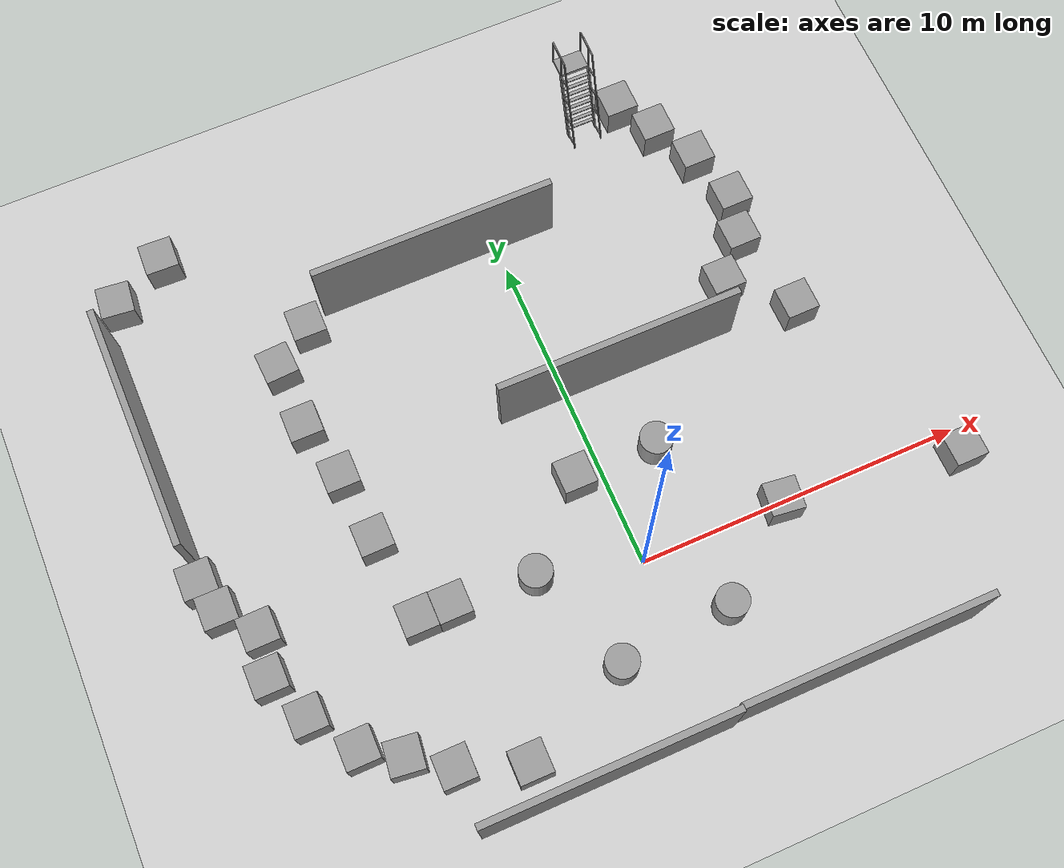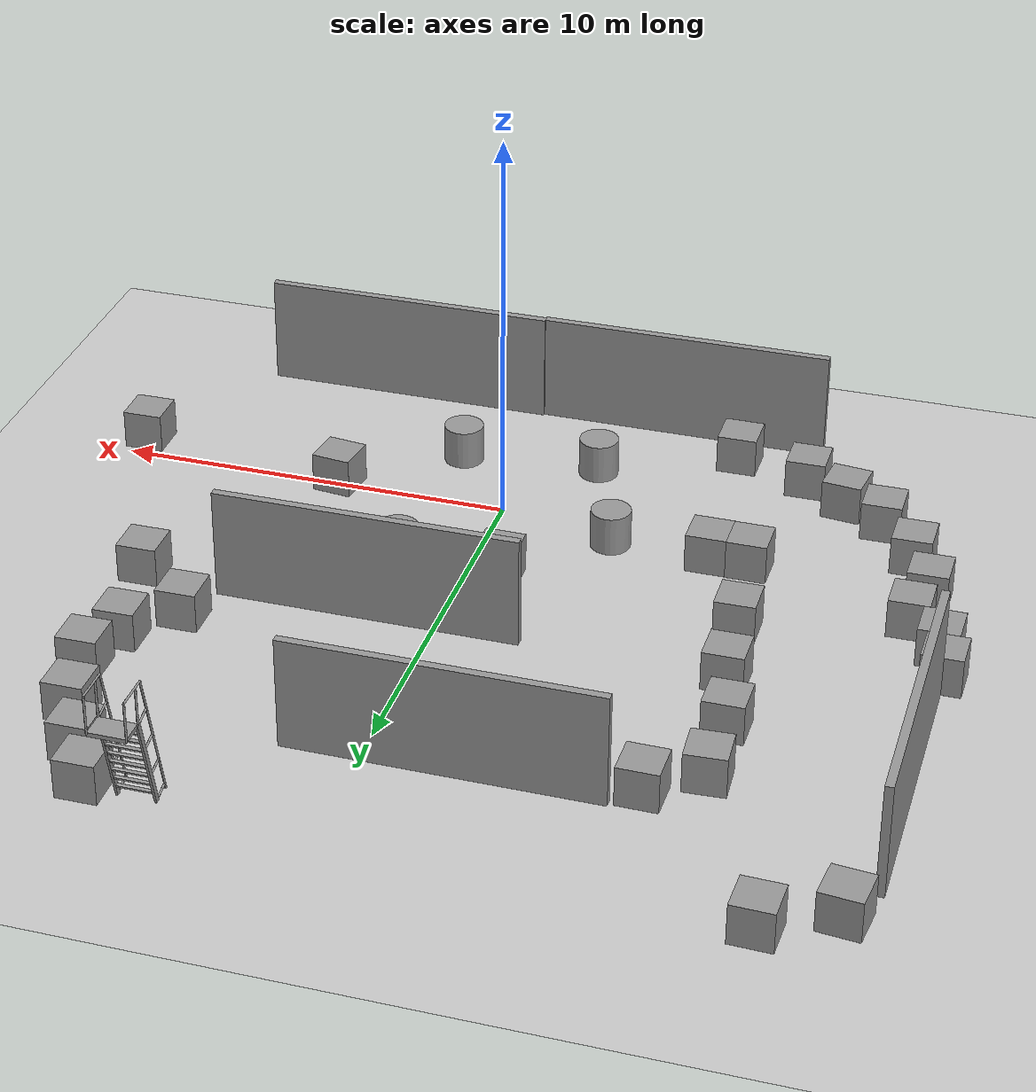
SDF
<sdf version="1.7">
 <world name="default">
  <light name="sun" type="directional">
   <pose>0 0 10 0 -0 0</pose>
   <diffuse>0.8 0.8 0.8 1</diffuse>
   <specular>0.2 0.2 0.2 1</specular>
   <attenuation>
    <range>1000</range>
    <constant>0.9</constant>
    <linear>0.01</linear>
    <quadratic>0.001</quadratic>
   </attenuation>
   <direction>-0.5 0.1 -0.9</direction>
   <spot><inner_angle>0</inner_angle><outer_angle>0</outer_angle><falloff>0</falloff></spot>
  </light>
  <model name="ground_plane">
   <static>1</static>
   <link name="link">
    <collision name="collision">
     <geometry><plane><normal>0 0 1</normal><size>100 100</size></plane></geometry>
     <surface><friction><ode><mu>100</mu><mu2>50</mu2></ode></friction></surface>
    </collision>
    <visual name="visual">
     <cast_shadows>0</cast_shadows>
     <geometry><plane><normal>0 0 1</normal><size>100 100</size></plane></geometry>
     <material>
      <script><uri>file://media/materials/scripts/gazebo.material</uri><name>Gazebo/Grey</name></script>
     </material>
    </visual>
   </link>
  </model>
  <gravity>0 0 -9.8</gravity>
  <magnetic_field>6e-06 2.3e-05 -4.2e-05</magnetic_field>
  <atmosphere type="adiabatic"/>
  <physics type="ode">
   <max_step_size>0.001</max_step_size>
   <real_time_factor>1</real_time_factor>
   <real_time_update_rate>1000</real_time_update_rate>
  </physics>
  <scene><ambient>0.4 0.4 0.4 1</ambient><background>0.7 0.7 0.7 1</background><shadows>1</shadows></scene>
  <audio><device>default</device></audio>
  <spherical_coordinates>
   <surface_model>EARTH_WGS84</surface_model>
   <latitude_deg>0</latitude_deg>
   <longitude_deg>0</longitude_deg>
   <elevation>0</elevation>
   <heading_deg>0</heading_deg>
  </spherical_coordinates>
  <model name="unit_box">
   <pose>-11.2168 13.3003 0.5 -0 -0 -0.103251</pose>
   <link name="link">
    <inertial>
     <mass>1</mass>
     <inertia>
      <ixx>0.166667</ixx>
      <ixy>0</ixy>
      <ixz>0</ixz>
      <iyy>0.166667</iyy>
      <iyz>0</iyz>
      <izz>0.166667</izz>
     </inertia>
    </inertial>
    <collision name="collision"><geometry><box><size>1 1 1</size></box></geometry></collision>
    <visual name="visual">
     <geometry><box><size>1 1 1</size></box></geometry>
     <material>
      <script><name>Gazebo/Grey</name><uri>file://media/materials/scripts/gazebo.material</uri></script>
     </material>
    </visual>
   </link>
  </model>
  <model name="unit_box_clone">
   <pose>5.2995 13.6481 0.499995 0 1e-05 0.005991</pose>
   <link name="link">
    <inertial>
     <mass>1</mass>
     <inertia>
      <ixx>0.166667</ixx>
      <ixy>0</ixy>
      <ixz>0</ixz>
      <iyy>0.166667</iyy>
      <iyz>0</iyz>
      <izz>0.166667</izz>
     </inertia>
    </inertial>
    <collision name="collision"><geometry><box><size>1 1 1</size></box></geometry></collision>
    <visual name="visual">
     <geometry><box><size>1 1 1</size></box></geometry>
     <material>
      <script><name>Gazebo/Grey</name><uri>file://media/materials/scripts/gazebo.material</uri></script>
     </material>
    </visual>
   </link>
  </model>
  <model name="unit_box_clone_0">
   <pose>5.9952 12.4311 0.499995 0 -1e-05 0.006049</pose>
   <link name="link">
    <inertial>
     <mass>1</mass>
     <inertia>
      <ixx>0.166667</ixx>
      <ixy>0</ixy>
      <ixz>0</ixz>
      <iyy>0.166667</iyy>
      <iyz>0</iyz>
      <izz>0.166667</izz>
     </inertia>
    </inertial>
    <collision name="collision"><geometry><box><size>1 1 1</size></box></geometry></collision>
    <visual name="visual">
     <geometry><box><size>1 1 1</size></box></geometry>
     <material>
      <script><name>Gazebo/Grey</name><uri>file://media/materials/scripts/gazebo.material</uri></script>
     </material>
    </visual>
   </link>
  </model>
  <model name="unit_box_clone_1">
   <pose>6.72968 11.0624 0.499995 0 -1e-05 0.006055</pose>
   <link name="link">
    <inertial>
     <mass>1</mass>
     <inertia>
      <ixx>0.166667</ixx>
      <ixy>0</ixy>
      <ixz>0</ixz>
      <iyy>0.166667</iyy>
      <iyz>0</iyz>
      <izz>0.166667</izz>
     </inertia>
    </inertial>
    <collision name="collision"><geometry><box><size>1 1 1</size></box></geometry></collision>
    <visual name="visual">
     <geometry><box><size>1 1 1</size></box></geometry>
     <material>
      <script><name>Gazebo/Grey</name><uri>file://media/materials/scripts/gazebo.material</uri></script>
     </material>
    </visual>
   </link>
  </model>
  <model name="unit_box_clone_2">
   <pose>7.17301 9.32175 0.499995 0 -1e-05 0.010117</pose>
   <link name="link">
    <inertial>
     <mass>1</mass>
     <inertia>
      <ixx>0.166667</ixx>
      <ixy>0</ixy>
      <ixz>0</ixz>
      <iyy>0.166667</iyy>
      <iyz>0</iyz>
      <izz>0.166667</izz>
     </inertia>
    </inertial>
    <collision name="collision"><geometry><box><size>1 1 1</size></box></geometry></collision>
    <visual name="visual">
     <geometry><box><size>1 1 1</size></box></geometry>
     <material>
      <script><name>Gazebo/Grey</name><uri>file://media/materials/scripts/gazebo.material</uri></script>
     </material>
    </visual>
   </link>
  </model>
  <model name="unit_box_clone_3">
   <pose>-11.7401 4.29637 0.499995 -1e-05 -0 -0.003177</pose>
   <link name="link">
    <inertial>
     <mass>1</mass>
     <inertia>
      <ixx>0.166667</ixx>
      <ixy>0</ixy>
      <ixz>0</ixz>
      <iyy>0.166667</iyy>
      <iyz>0</iyz>
      <izz>0.166667</izz>
     </inertia>
    </inertial>
    <collision name="collision"><geometry><box><size>1 1 1</size></box></geometry></collision>
    <visual name="visual">
     <geometry><box><size>1 1 1</size></box></geometry>
     <material>
      <script><name>Gazebo/Grey</name><uri>file://media/materials/scripts/gazebo.material</uri></script>
     </material>
    </visual>
   </link>
  </model>
  <model name="unit_box_0">
   <pose>-5.1691 -3.96341 0.499995 0 1e-05 -5e-06</pose>
   <link name="link">
    <inertial>
     <mass>1</mass>
     <inertia>
      <ixx>0.166667</ixx>
      <ixy>0</ixy>
      <ixz>0</ixz>
      <iyy>0.166667</iyy>
      <iyz>0</iyz>
      <izz>0.166667</izz>
     </inertia>
    </inertial>
    <collision name="collision"><geometry><box><size>1 1 1</size></box></geometry></collision>
    <visual name="visual">
     <geometry><box><size>1 1 1</size></box></geometry>
     <material>
      <script><name>Gazebo/Grey</name><uri>file://media/materials/scripts/gazebo.material</uri></script>
     </material>
    </visual>
   </link>
  </model>
  <model name="unit_box_1">
   <pose>-5.49626 0.9014 0.499995 0 1e-05 -0.000242</pose>
   <link name="link">
    <inertial>
     <mass>1</mass>
     <inertia>
      <ixx>0.166667</ixx>
      <ixy>0</ixy>
      <ixz>0</ixz>
      <iyy>0.166667</iyy>
      <iyz>0</iyz>
      <izz>0.166667</izz>
     </inertia>
    </inertial>
    <collision name="collision"><geometry><box><size>1 1 1</size></box></geometry></collision>
    <visual name="visual">
     <geometry><box><size>1 1 1</size></box></geometry>
     <material>
      <script><name>Gazebo/Grey</name><uri>file://media/materials/scripts/gazebo.material</uri></script>
     </material>
    </visual>
   </link>
  </model>
  <model name="unit_box_2">
   <pose>-6.49752 0.913263 0.499995 1e-05 -0 -0.000773</pose>
   <link name="link">
    <inertial>
     <mass>1</mass>
     <inertia>
      <ixx>0.166667</ixx>
      <ixy>0</ixy>
      <ixz>0</ixz>
      <iyy>0.166667</iyy>
      <iyz>0</iyz>
      <izz>0.166667</izz>
     </inertia>
    </inertial>
    <collision name="collision"><geometry><box><size>1 1 1</size></box></geometry></collision>
    <visual name="visual">
     <geometry><box><size>1 1 1</size></box></geometry>
     <material>
      <script><name>Gazebo/Grey</name><uri>file://media/materials/scripts/gazebo.material</uri></script>
     </material>
    </visual>
   </link>
  </model>
  <model name="unit_box_3">
   <pose>-0.828361 2.96506 0.499995 0 -1e-05 -0.00072</pose>
   <link name="link">
    <inertial>
     <mass>1</mass>
     <inertia>
      <ixx>0.166667</ixx>
      <ixy>0</ixy>
      <ixz>0</ixz>
      <iyy>0.166667</iyy>
      <iyz>0</iyz>
      <izz>0.166667</izz>
     </inertia>
    </inertial>
    <collision name="collision"><geometry><box><size>1 1 1</size></box></geometry></collision>
    <visual name="visual">
     <geometry><box><size>1 1 1</size></box></geometry>
     <material>
      <script><name>Gazebo/Grey</name><uri>file://media/materials/scripts/gazebo.material</uri></script>
     </material>
    </visual>
   </link>
  </model>
  <model name="unit_box_4">
   <pose>-7.01197 5.65052 0.499995 0 -1e-05 -0.000837</pose>
   <link name="link">
    <inertial>
     <mass>1</mass>
     <inertia>
      <ixx>0.166667</ixx>
      <ixy>0</ixy>
      <ixz>0</ixz>
      <iyy>0.166667</iyy>
      <iyz>0</iyz>
      <izz>0.166667</izz>
     </inertia>
    </inertial>
    <collision name="collision"><geometry><box><size>1 1 1</size></box></geometry></collision>
    <visual name="visual">
     <geometry><box><size>1 1 1</size></box></geometry>
     <material>
      <script><name>Gazebo/Grey</name><uri>file://media/materials/scripts/gazebo.material</uri></script>
     </material>
    </visual>
   </link>
  </model>
  <model name="unit_box_5">
   <pose>-7.43923 7.4957 0.499995 0 -1e-05 -0.000852</pose>
   <link name="link">
    <inertial>
     <mass>1</mass>
     <inertia>
      <ixx>0.166667</ixx>
      <ixy>0</ixy>
      <ixz>0</ixz>
      <iyy>0.166667</iyy>
      <iyz>0</iyz>
      <izz>0.166667</izz>
     </inertia>
    </inertial>
    <collision name="collision"><geometry><box><size>1 1 1</size></box></geometry></collision>
    <visual name="visual">
     <geometry><box><size>1 1 1</size></box></geometry>
     <material>
      <script><name>Gazebo/Grey</name><uri>file://media/materials/scripts/gazebo.material</uri></script>
     </material>
    </visual>
   </link>
  </model>
  <model name="unit_box_6">
   <pose>-6.25848 10.4149 0.499995 -1e-05 0 -0.00887</pose>
   <link name="link">
    <inertial>
     <mass>1</mass>
     <inertia>
      <ixx>0.166667</ixx>
      <ixy>0</ixy>
      <ixz>0</ixz>
      <iyy>0.166667</iyy>
      <iyz>0</iyz>
      <izz>0.166667</izz>
     </inertia>
    </inertial>
    <collision name="collision"><geometry><box><size>1 1 1</size></box></geometry></collision>
    <visual name="visual">
     <geometry><box><size>1 1 1</size></box></geometry>
     <material>
      <script><name>Gazebo/Grey</name><uri>file://media/materials/scripts/gazebo.material</uri></script>
     </material>
    </visual>
   </link>
  </model>
  <model name="unit_box_7">
   <pose>-7.48563 9.50061 0.499995 -0 -1e-05 0.055997</pose>
   <link name="link">
    <inertial>
     <mass>1</mass>
     <inertia>
      <ixx>0.166667</ixx>
      <ixy>0</ixy>
      <ixz>0</ixz>
      <iyy>0.166667</iyy>
      <iyz>0</iyz>
      <izz>0.166667</izz>
     </inertia>
    </inertial>
    <collision name="collision"><geometry><box><size>1 1 1</size></box></geometry></collision>
    <visual name="visual">
     <geometry><box><size>1 1 1</size></box></geometry>
     <material>
      <script><name>Gazebo/Grey</name><uri>file://media/materials/scripts/gazebo.material</uri></script>
     </material>
    </visual>
   </link>
  </model>
  <model name="unit_box_8">
   <pose>-9.57504 14.1698 0.499995 -0 -1e-05 -0.031338</pose>
   <link name="link">
    <inertial>
     <mass>1</mass>
     <inertia>
      <ixx>0.166667</ixx>
      <ixy>0</ixy>
      <ixz>0</ixz>
      <iyy>0.166667</iyy>
      <iyz>0</iyz>
      <izz>0.166667</izz>
     </inertia>
    </inertial>
    <collision name="collision"><geometry><box><size>1 1 1</size></box></geometry></collision>
    <visual name="visual">
     <geometry><box><size>1 1 1</size></box></geometry>
     <material>
      <script><name>Gazebo/Grey</name><uri>file://media/materials/scripts/gazebo.material</uri></script>
     </material>
    </visual>
   </link>
  </model>
  <model name="unit_box_9">
   <pose>4.31522 -0.036113 0.499995 0 -1e-05 -0.119973</pose>
   <link name="link">
    <inertial>
     <mass>1</mass>
     <inertia>
      <ixx>0.166667</ixx>
      <ixy>0</ixy>
      <ixz>0</ixz>
      <iyy>0.166667</iyy>
      <iyz>0</iyz>
      <izz>0.166667</izz>
     </inertia>
    </inertial>
    <collision name="collision"><geometry><box><size>1 1 1</size></box></geometry></collision>
    <visual name="visual">
     <geometry><box><size>1 1 1</size></box></geometry>
     <material>
      <script><name>Gazebo/Grey</name><uri>file://media/materials/scripts/gazebo.material</uri></script>
     </material>
    </visual>
   </link>
  </model>
  <model name="unit_box_9_clone">
   <pose>-7.07865 -3.26818 0.499995 0 -1e-05 0</pose>
   <link name="link">
    <inertial>
     <mass>1</mass>
     <inertia>
      <ixx>0.166667</ixx>
      <ixy>0</ixy>
      <ixz>0</ixz>
      <iyy>0.166667</iyy>
      <iyz>0</iyz>
      <izz>0.166667</izz>
     </inertia>
    </inertial>
    <collision name="collision"><geometry><box><size>1 1 1</size></box></geometry></collision>
    <visual name="visual">
     <geometry><box><size>1 1 1</size></box></geometry>
     <material>
      <script><name>Gazebo/Grey</name><uri>file://media/materials/scripts/gazebo.material</uri></script>
     </material>
    </visual>
   </link>
  </model>
  <model name="unit_box_10">
   <pose>-8.20219 -2.47169 0.499995 0 -1e-05 -0.119963</pose>
   <link name="link">
    <inertial>
     <mass>1</mass>
     <inertia>
      <ixx>0.166667</ixx>
      <ixy>0</ixy>
      <ixz>0</ixz>
      <iyy>0.166667</iyy>
      <iyz>0</iyz>
      <izz>0.166667</izz>
     </inertia>
    </inertial>
    <collision name="collision"><geometry><box><size>1 1 1</size></box></geometry></collision>
    <visual name="visual">
     <geometry><box><size>1 1 1</size></box></geometry>
     <material>
      <script><name>Gazebo/Grey</name><uri>file://media/materials/scripts/gazebo.material</uri></script>
     </material>
    </visual>
   </link>
  </model>
  <model name="unit_box_9_clone_0">
   <pose>-9.26634 -1.78576 0.499995 -1e-05 -0 0.004711</pose>
   <link name="link">
    <inertial>
     <mass>1</mass>
     <inertia>
      <ixx>0.166667</ixx>
      <ixy>0</ixy>
      <ixz>0</ixz>
      <iyy>0.166667</iyy>
      <iyz>0</iyz>
      <izz>0.166667</izz>
     </inertia>
    </inertial>
    <collision name="collision"><geometry><box><size>1 1 1</size></box></geometry></collision>
    <visual name="visual">
     <geometry><box><size>1 1 1</size></box></geometry>
     <material>
      <script><name>Gazebo/Grey</name><uri>file://media/materials/scripts/gazebo.material</uri></script>
     </material>
    </visual>
   </link>
  </model>
  <model name="unit_box_9_clone_1">
   <pose>-10.2405 -0.435828 0.499995 -1e-05 -0 0.004816</pose>
   <link name="link">
    <inertial>
     <mass>1</mass>
     <inertia>
      <ixx>0.166667</ixx>
      <ixy>0</ixy>
      <ixz>0</ixz>
      <iyy>0.166667</iyy>
      <iyz>0</iyz>
      <izz>0.166667</izz>
     </inertia>
    </inertial>
    <collision name="collision"><geometry><box><size>1 1 1</size></box></geometry></collision>
    <visual name="visual">
     <geometry><box><size>1 1 1</size></box></geometry>
     <material>
      <script><name>Gazebo/Grey</name><uri>file://media/materials/scripts/gazebo.material</uri></script>
     </material>
    </visual>
   </link>
  </model>
  <model name="unit_box_9_clone_2">
   <pose>-10.8614 0.984634 0.499995 -0 -1e-05 0.00545</pose>
   <link name="link">
    <inertial>
     <mass>1</mass>
     <inertia>
      <ixx>0.166667</ixx>
      <ixy>0</ixy>
      <ixz>0</ixz>
      <iyy>0.166667</iyy>
      <iyz>0</iyz>
      <izz>0.166667</izz>
     </inertia>
    </inertial>
    <collision name="collision"><geometry><box><size>1 1 1</size></box></geometry></collision>
    <visual name="visual">
     <geometry><box><size>1 1 1</size></box></geometry>
     <material>
      <script><name>Gazebo/Grey</name><uri>file://media/materials/scripts/gazebo.material</uri></script>
     </material>
    </visual>
   </link>
  </model>
  <model name="unit_box_9_clone_3">
   <pose>-11.4994 3.29533 0.499995 0 1e-05 -0.003078</pose>
   <link name="link">
    <inertial>
     <mass>1</mass>
     <inertia>
      <ixx>0.166667</ixx>
      <ixy>0</ixy>
      <ixz>0</ixz>
      <iyy>0.166667</iyy>
      <iyz>0</iyz>
      <izz>0.166667</izz>
     </inertia>
    </inertial>
    <collision name="collision"><geometry><box><size>1 1 1</size></box></geometry></collision>
    <visual name="visual">
     <geometry><box><size>1 1 1</size></box></geometry>
     <material>
      <script><name>Gazebo/Grey</name><uri>file://media/materials/scripts/gazebo.material</uri></script>
     </material>
    </visual>
   </link>
  </model>
  <model name="unit_box_9_clone_4">
   <pose>-6.79653 3.5319 0.499995 1e-05 0 0.010719</pose>
   <link name="link">
    <inertial>
     <mass>1</mass>
     <inertia>
      <ixx>0.166667</ixx>
      <ixy>0</ixy>
      <ixz>0</ixz>
      <iyy>0.166667</iyy>
      <iyz>0</iyz>
      <izz>0.166667</izz>
     </inertia>
    </inertial>
    <collision name="collision"><geometry><box><size>1 1 1</size></box></geometry></collision>
    <visual name="visual">
     <geometry><box><size>1 1 1</size></box></geometry>
     <material>
      <script><name>Gazebo/Grey</name><uri>file://media/materials/scripts/gazebo.material</uri></script>
     </material>
    </visual>
   </link>
  </model>
  <model name="unit_box_9_clone_5">
   <pose>-10.6446 2.29677 0.499995 -1e-05 -0 0.008445</pose>
   <link name="link">
    <inertial>
     <mass>1</mass>
     <inertia>
      <ixx>0.166667</ixx>
      <ixy>0</ixy>
      <ixz>0</ixz>
      <iyy>0.166667</iyy>
      <iyz>0</iyz>
      <izz>0.166667</izz>
     </inertia>
    </inertial>
    <collision name="collision"><geometry><box><size>1 1 1</size></box></geometry></collision>
    <visual name="visual">
     <geometry><box><size>1 1 1</size></box></geometry>
     <material>
      <script><name>Gazebo/Grey</name><uri>file://media/materials/scripts/gazebo.material</uri></script>
     </material>
    </visual>
   </link>
  </model>
  <model name="grey_wall">
   <static>1</static>
   <link name="link">
    <pose>0 0 1.4 0 -0 0</pose>
    <collision name="collision"><geometry><box><size>7.5 0.2 2.8</size></box></geometry></collision>
    <visual name="visual">
     <cast_shadows>0</cast_shadows>
     <geometry><box><size>7.5 0.2 2.8</size></box></geometry>
     <material>
      <script>
       <uri>model://grey_wall/materials/scripts</uri>
       <uri>model://grey_wall/materials/textures</uri>
       <name>vrc/grey_wall</name>
      </script>
     </material>
    </visual>
   </link>
   <pose>4.09532 -5.05186 0 0 -0 0</pose>
  </model>
  <model name="grey_wall_clone">
   <static>1</static>
   <link name="link">
    <pose>0 0 1.4 0 -0 0</pose>
    <collision name="collision"><geometry><box><size>7.5 0.2 2.8</size></box></geometry></collision>
    <visual name="visual">
     <cast_shadows>0</cast_shadows>
     <geometry><box><size>7.5 0.2 2.8</size></box></geometry>
     <material>
      <script>
       <uri>model://grey_wall/materials/scripts</uri>
       <uri>model://grey_wall/materials/textures</uri>
       <name>vrc/grey_wall</name>
      </script>
     </material>
    </visual>
   </link>
   <pose>-3.37906 -5.10536 0 0 -0 0</pose>
  </model>
  <model name="grey_wall_clone_0_clone">
   <static>1</static>
   <link name="link">
    <pose>0 0 1.4 0 -0 0</pose>
    <collision name="collision"><geometry><box><size>7.5 0.2 2.8</size></box></geometry></collision>
    <visual name="visual">
     <cast_shadows>0</cast_shadows>
     <geometry><box><size>7.5 0.2 2.8</size></box></geometry>
     <material>
      <script>
       <uri>model://grey_wall/materials/scripts</uri>
       <uri>model://grey_wall/materials/textures</uri>
       <name>vrc/grey_wall</name>
      </script>
     </material>
    </visual>
   </link>
   <pose>-11.7144 8.54732 0 0 -0 1.58113</pose>
  </model>
  <model name="grey_wall_clone_0_clone_0">
   <static>1</static>
   <link name="link">
    <pose>0 0 1.4 0 -0 0</pose>
    <collision name="collision"><geometry><box><size>7.5 0.2 2.8</size></box></geometry></collision>
    <visual name="visual">
     <cast_shadows>0</cast_shadows>
     <geometry><box><size>7.5 0.2 2.8</size></box></geometry>
     <material>
      <script>
       <uri>model://grey_wall/materials/scripts</uri>
       <uri>model://grey_wall/materials/textures</uri>
       <name>vrc/grey_wall</name>
      </script>
     </material>
    </visual>
   </link>
   <pose>-1.88537 10.8825 0 0 -0 0</pose>
  </model>
  <model name="grey_wall_clone_0_clone_0_clone">
   <static>1</static>
   <link name="link">
    <pose>0 0 1.4 0 -0 0</pose>
    <collision name="collision"><geometry><box><size>7.5 0.2 2.8</size></box></geometry></collision>
    <visual name="visual">
     <cast_shadows>0</cast_shadows>
     <geometry><box><size>7.5 0.2 2.8</size></box></geometry>
     <material>
      <script>
       <uri>model://grey_wall/materials/scripts</uri>
       <uri>model://grey_wall/materials/textures</uri>
       <name>vrc/grey_wall</name>
      </script>
     </material>
    </visual>
   </link>
   <pose>1.66853 5.55754 0 0 -0 0</pose>
  </model>
  <model name="unit_box_clone_2_clone">
   <pose>5.75697 6.85812 0.499995 -1e-05 -0 0.010117</pose>
   <link name="link">
    <inertial>
     <mass>1</mass>
     <inertia>
      <ixx>0.166667</ixx>
      <ixy>0</ixy>
      <ixz>0</ixz>
      <iyy>0.166667</iyy>
      <iyz>0</iyz>
      <izz>0.166667</izz>
     </inertia>
    </inertial>
    <collision name="collision"><geometry><box><size>1 1 1</size></box></geometry></collision>
    <visual name="visual">
     <geometry><box><size>1 1 1</size></box></geometry>
     <material>
      <script><name>Gazebo/Grey</name><uri>file://media/materials/scripts/gazebo.material</uri></script>
     </material>
    </visual>
   </link>
  </model>
  <model name="unit_box_clone_2_clone_0">
   <pose>6.81358 8.02295 0.499995 -1e-05 -0 0.010117</pose>
   <link name="link">
    <inertial>
     <mass>1</mass>
     <inertia>
      <ixx>0.166667</ixx>
      <ixy>0</ixy>
      <ixz>0</ixz>
      <iyy>0.166667</iyy>
      <iyz>0</iyz>
      <izz>0.166667</izz>
     </inertia>
    </inertial>
    <collision name="collision"><geometry><box><size>1 1 1</size></box></geometry></collision>
    <visual name="visual">
     <geometry><box><size>1 1 1</size></box></geometry>
     <material>
      <script><name>Gazebo/Grey</name><uri>file://media/materials/scripts/gazebo.material</uri></script>
     </material>
    </visual>
   </link>
  </model>
  <model name="ladder_75deg_2rails">
   <static>1</static>
   <link name="step0">
    <pose>0 0.071453 0.266667 0 -0 0</pose>
    <inertial>
     <mass>9.75482</mass>
     <inertia>
      <ixx>0.00957124</ixx>
      <iyy>0.65963</iyy>
      <izz>0.666842</izz>
      <ixy>0</ixy>
      <ixz>0</ixz>
      <iyz>0</iyz>
     </inertia>
    </inertial>
    <collision name="collision"><geometry><box><size>0.9 0.1016 0.0381</size></box></geometry></collision>
    <visual name="visual">
     <geometry><box><size>0.9 0.1016 0.0381</size></box></geometry>
     <material>
      <script><uri>file://media/materials/scripts/gazebo.material</uri><name>Gazebo/Grey</name></script>
     </material>
    </visual>
   </link>
   <link name="step1">
    <pose>0 0.142906 0.533333 0 -0 0</pose>
    <inertial>
     <mass>9.75482</mass>
     <inertia>
      <ixx>0.00957124</ixx>
      <iyy>0.65963</iyy>
      <izz>0.666842</izz>
      <ixy>0</ixy>
      <ixz>0</ixz>
      <iyz>0</iyz>
     </inertia>
    </inertial>
    <collision name="collision"><geometry><box><size>0.9 0.1016 0.0381</size></box></geometry></collision>
    <visual name="visual">
     <geometry><box><size>0.9 0.1016 0.0381</size></box></geometry>
     <material>
      <script><uri>file://media/materials/scripts/gazebo.material</uri><name>Gazebo/Grey</name></script>
     </material>
    </visual>
   </link>
   <link name="step2">
    <pose>0 0.214359 0.8 0 -0 0</pose>
    <inertial>
     <mass>9.75482</mass>
     <inertia>
      <ixx>0.00957124</ixx>
      <iyy>0.65963</iyy>
      <izz>0.666842</izz>
      <ixy>0</ixy>
      <ixz>0</ixz>
      <iyz>0</iyz>
     </inertia>
    </inertial>
    <collision name="collision"><geometry><box><size>0.9 0.1016 0.0381</size></box></geometry></collision>
    <visual name="visual">
     <geometry><box><size>0.9 0.1016 0.0381</size></box></geometry>
     <material>
      <script><uri>file://media/materials/scripts/gazebo.material</uri><name>Gazebo/Grey</name></script>
     </material>
    </visual>
   </link>
   <link name="step3">
    <pose>0 0.285812 1.06667 0 -0 0</pose>
    <inertial>
     <mass>9.75482</mass>
     <inertia>
      <ixx>0.00957124</ixx>
      <iyy>0.65963</iyy>
      <izz>0.666842</izz>
      <ixy>0</ixy>
      <ixz>0</ixz>
      <iyz>0</iyz>
     </inertia>
    </inertial>
    <collision name="collision"><geometry><box><size>0.9 0.1016 0.0381</size></box></geometry></collision>
    <visual name="visual">
     <geometry><box><size>0.9 0.1016 0.0381</size></box></geometry>
     <material>
      <script><uri>file://media/materials/scripts/gazebo.material</uri><name>Gazebo/Grey</name></script>
     </material>
    </visual>
   </link>
   <link name="step4">
    <pose>0 0.357266 1.33333 0 -0 0</pose>
    <inertial>
     <mass>9.75482</mass>
     <inertia>
      <ixx>0.00957124</ixx>
      <iyy>0.65963</iyy>
      <izz>0.666842</izz>
      <ixy>0</ixy>
      <ixz>0</ixz>
      <iyz>0</iyz>
     </inertia>
    </inertial>
    <collision name="collision"><geometry><box><size>0.9 0.1016 0.0381</size></box></geometry></collision>
    <visual name="visual">
     <geometry><box><size>0.9 0.1016 0.0381</size></box></geometry>
     <material>
      <script><uri>file://media/materials/scripts/gazebo.material</uri><name>Gazebo/Grey</name></script>
     </material>
    </visual>
   </link>
   <link name="step5">
    <pose>0 0.428719 1.6 0 -0 0</pose>
    <inertial>
     <mass>9.75482</mass>
     <inertia>
      <ixx>0.00957124</ixx>
      <iyy>0.65963</iyy>
      <izz>0.666842</izz>
      <ixy>0</ixy>
      <ixz>0</ixz>
      <iyz>0</iyz>
     </inertia>
    </inertial>
    <collision name="collision"><geometry><box><size>0.9 0.1016 0.0381</size></box></geometry></collision>
    <visual name="visual">
     <geometry><box><size>0.9 0.1016 0.0381</size></box></geometry>
     <material>
      <script><uri>file://media/materials/scripts/gazebo.material</uri><name>Gazebo/Grey</name></script>
     </material>
    </visual>
   </link>
   <link name="step6">
    <pose>0 0.500172 1.86667 0 -0 0</pose>
    <inertial>
     <mass>9.75482</mass>
     <inertia>
      <ixx>0.00957124</ixx>
      <iyy>0.65963</iyy>
      <izz>0.666842</izz>
      <ixy>0</ixy>
      <ixz>0</ixz>
      <iyz>0</iyz>
     </inertia>
    </inertial>
    <collision name="collision"><geometry><box><size>0.9 0.1016 0.0381</size></box></geometry></collision>
    <visual name="visual">
     <geometry><box><size>0.9 0.1016 0.0381</size></box></geometry>
     <material>
      <script><uri>file://media/materials/scripts/gazebo.material</uri><name>Gazebo/Grey</name></script>
     </material>
    </visual>
   </link>
   <link name="step7">
    <pose>0 0.571625 2.13333 0 -0 0</pose>
    <inertial>
     <mass>9.75482</mass>
     <inertia>
      <ixx>0.00957124</ixx>
      <iyy>0.65963</iyy>
      <izz>0.666842</izz>
      <ixy>0</ixy>
      <ixz>0</ixz>
      <iyz>0</iyz>
     </inertia>
    </inertial>
    <collision name="collision"><geometry><box><size>0.9 0.1016 0.0381</size></box></geometry></collision>
    <visual name="visual">
     <geometry><box><size>0.9 0.1016 0.0381</size></box></geometry>
     <material>
      <script><uri>file://media/materials/scripts/gazebo.material</uri><name>Gazebo/Grey</name></script>
     </material>
    </visual>
   </link>
   <link name="landing">
    <pose>0 0.943078 2.4 0 -0 0</pose>
    <inertial>
     <mass>57.6072</mass>
     <inertia><ixx>1.73518</ixx><iyy>3.89545</iyy><izz>5.6167</izz><ixy>0</ixy><ixz>0</ixz><iyz>0</iyz></inertia>
    </inertial>
    <collision name="collision"><geometry><box><size>0.9 0.6 0.1016</size></box></geometry></collision>
    <visual name="visual">
     <geometry><box><size>0.9 0.6 0.1016</size></box></geometry>
     <material>
      <script><uri>file://media/materials/scripts/gazebo.material</uri><name>Gazebo/Grey</name></script>
     </material>
    </visual>
   </link>
   <link name="left_side_wall">
    <pose>-0.45 0.321539 1.2 1.309 -0 0</pose>
    <collision name="collision"><geometry><box><size>0.0508 2.56466 0.13</size></box></geometry></collision>
    <visual name="visual">
     <geometry><box><size>0.0508 2.56466 0.13</size></box></geometry>
     <material>
      <script><uri>file://media/materials/scripts/gazebo.material</uri><name>Gazebo/Grey</name></script>
     </material>
    </visual>
   </link>
   <link name="right_side_wall">
    <pose>0.45 0.321539 1.2 1.309 -0 0</pose>
    <collision name="collision"><geometry><box><size>0.0508 2.56466 0.13</size></box></geometry></collision>
    <visual name="visual">
     <geometry><box><size>0.0508 2.56466 0.13</size></box></geometry>
     <material>
      <script><uri>file://media/materials/scripts/gazebo.material</uri><name>Gazebo/Grey</name></script>
     </material>
    </visual>
   </link>
   <link name="left_railing_long">
    <pose>-0.45 -0.053461 1.66651 -0.261799 0 0</pose>
    <collision name="collision">
     <geometry><cylinder><radius>0.02413</radius><length>3.51529</length></cylinder></geometry>
    </collision>
    <visual name="visual">
     <geometry><cylinder><radius>0.02413</radius><length>3.51529</length></cylinder></geometry>
     <material>
      <script><uri>file://media/materials/scripts/gazebo.material</uri><name>Gazebo/Grey</name></script>
     </material>
    </visual>
   </link>
   <link name="left_railing_upright0">
    <pose>-0.45 -0.210089 0.056293 1.309 -0 0</pose>
    <collision name="collision">
     <geometry><cylinder><radius>0.02413</radius><length>0.482963</length></cylinder></geometry>
    </collision>
    <visual name="visual">
     <geometry><cylinder><radius>0.02413</radius><length>0.482963</length></cylinder></geometry>
     <material>
      <script><uri>file://media/materials/scripts/gazebo.material</uri><name>Gazebo/Grey</name></script>
     </material>
    </visual>
   </link>
   <link name="left_railing_upright1">
    <pose>-0.45 0.00427 0.856293 1.309 -0 0</pose>
    <collision name="collision">
     <geometry><cylinder><radius>0.02413</radius><length>0.482963</length></cylinder></geometry>
    </collision>
    <visual name="visual">
     <geometry><cylinder><radius>0.02413</radius><length>0.482963</length></cylinder></geometry>
     <material>
      <script><uri>file://media/materials/scripts/gazebo.material</uri><name>Gazebo/Grey</name></script>
     </material>
    </visual>
   </link>
   <link name="left_railing_upright2">
    <pose>-0.45 0.21863 1.65629 1.309 -0 0</pose>
    <collision name="collision">
     <geometry><cylinder><radius>0.02413</radius><length>0.482963</length></cylinder></geometry>
    </collision>
    <visual name="visual">
     <geometry><cylinder><radius>0.02413</radius><length>0.482963</length></cylinder></geometry>
     <material>
      <script><uri>file://media/materials/scripts/gazebo.material</uri><name>Gazebo/Grey</name></script>
     </material>
    </visual>
   </link>
   <link name="left_railing_upright3">
    <pose>-0.45 0.432989 2.45629 1.309 -0 0</pose>
    <collision name="collision">
     <geometry><cylinder><radius>0.02413</radius><length>0.482963</length></cylinder></geometry>
    </collision>
    <visual name="visual">
     <geometry><cylinder><radius>0.02413</radius><length>0.482963</length></cylinder></geometry>
     <material>
      <script><uri>file://media/materials/scripts/gazebo.material</uri><name>Gazebo/Grey</name></script>
     </material>
    </visual>
   </link>
   <link name="left_railing_landing_top">
    <pose>-0.45 0.818078 3.35714 1.5708 -0 0</pose>
    <collision name="collision">
     <geometry><cylinder><radius>0.02413</radius><length>0.87413</length></cylinder></geometry>
    </collision>
    <visual name="visual">
     <geometry><cylinder><radius>0.02413</radius><length>0.87413</length></cylinder></geometry>
     <material>
      <script><uri>file://media/materials/scripts/gazebo.material</uri><name>Gazebo/Grey</name></script>
     </material>
    </visual>
   </link>
   <link name="left_railing_landing_upright_0">
    <pose>-0.45 0.643078 2.86651 0 -0 0</pose>
    <collision name="collision">
     <geometry><cylinder><radius>0.02413</radius><length>0.933013</length></cylinder></geometry>
    </collision>
    <visual name="visual">
     <geometry><cylinder><radius>0.02413</radius><length>0.933013</length></cylinder></geometry>
     <material>
      <script><uri>file://media/materials/scripts/gazebo.material</uri><name>Gazebo/Grey</name></script>
     </material>
    </visual>
   </link>
   <link name="left_railing_landing_upright_1">
    <pose>-0.45 1.24308 2.86651 0 -0 0</pose>
    <collision name="collision">
     <geometry><cylinder><radius>0.02413</radius><length>0.933013</length></cylinder></geometry>
    </collision>
    <visual name="visual">
     <geometry><cylinder><radius>0.02413</radius><length>0.933013</length></cylinder></geometry>
     <material>
      <script><uri>file://media/materials/scripts/gazebo.material</uri><name>Gazebo/Grey</name></script>
     </material>
    </visual>
   </link>
   <link name="right_railing_long">
    <pose>0.45 -0.053461 1.66651 -0.261799 0 0</pose>
    <collision name="collision">
     <geometry><cylinder><radius>0.02413</radius><length>3.51529</length></cylinder></geometry>
    </collision>
    <visual name="visual">
     <geometry><cylinder><radius>0.02413</radius><length>3.51529</length></cylinder></geometry>
     <material>
      <script><uri>file://media/materials/scripts/gazebo.material</uri><name>Gazebo/Grey</name></script>
     </material>
    </visual>
   </link>
   <link name="right_railing_upright0">
    <pose>0.45 -0.210089 0.056293 1.309 -0 0</pose>
    <collision name="collision">
     <geometry><cylinder><radius>0.02413</radius><length>0.482963</length></cylinder></geometry>
    </collision>
    <visual name="visual">
     <geometry><cylinder><radius>0.02413</radius><length>0.482963</length></cylinder></geometry>
     <material>
      <script><uri>file://media/materials/scripts/gazebo.material</uri><name>Gazebo/Grey</name></script>
     </material>
    </visual>
   </link>
   <link name="right_railing_upright1">
    <pose>0.45 0.00427 0.856293 1.309 -0 0</pose>
    <collision name="collision">
     <geometry><cylinder><radius>0.02413</radius><length>0.482963</length></cylinder></geometry>
    </collision>
    <visual name="visual">
     <geometry><cylinder><radius>0.02413</radius><length>0.482963</length></cylinder></geometry>
     <material>
      <script><uri>file://media/materials/scripts/gazebo.material</uri><name>Gazebo/Grey</name></script>
     </material>
    </visual>
   </link>
   <link name="right_railing_upright2">
    <pose>0.45 0.21863 1.65629 1.309 -0 0</pose>
    <collision name="collision">
     <geometry><cylinder><radius>0.02413</radius><length>0.482963</length></cylinder></geometry>
    </collision>
    <visual name="visual">
     <geometry><cylinder><radius>0.02413</radius><length>0.482963</length></cylinder></geometry>
     <material>
      <script><uri>file://media/materials/scripts/gazebo.material</uri><name>Gazebo/Grey</name></script>
     </material>
    </visual>
   </link>
   <link name="right_railing_upright3">
    <pose>0.45 0.432989 2.45629 1.309 -0 0</pose>
    <collision name="collision">
     <geometry><cylinder><radius>0.02413</radius><length>0.482963</length></cylinder></geometry>
    </collision>
    <visual name="visual">
     <geometry><cylinder><radius>0.02413</radius><length>0.482963</length></cylinder></geometry>
     <material>
      <script><uri>file://media/materials/scripts/gazebo.material</uri><name>Gazebo/Grey</name></script>
     </material>
    </visual>
   </link>
   <link name="right_railing_landing_top">
    <pose>0.45 0.818078 3.35714 1.5708 -0 0</pose>
    <collision name="collision">
     <geometry><cylinder><radius>0.02413</radius><length>0.87413</length></cylinder></geometry>
    </collision>
    <visual name="visual">
     <geometry><cylinder><radius>0.02413</radius><length>0.87413</length></cylinder></geometry>
     <material>
      <script><uri>file://media/materials/scripts/gazebo.material</uri><name>Gazebo/Grey</name></script>
     </material>
    </visual>
   </link>
   <link name="right_railing_landing_upright_0">
    <pose>0.45 0.643078 2.86651 0 -0 0</pose>
    <collision name="collision">
     <geometry><cylinder><radius>0.02413</radius><length>0.933013</length></cylinder></geometry>
    </collision>
    <visual name="visual">
     <geometry><cylinder><radius>0.02413</radius><length>0.933013</length></cylinder></geometry>
     <material>
      <script><uri>file://media/materials/scripts/gazebo.material</uri><name>Gazebo/Grey</name></script>
     </material>
    </visual>
   </link>
   <link name="right_railing_landing_upright_1">
    <pose>0.45 1.24308 2.86651 0 -0 0</pose>
    <collision name="collision">
     <geometry><cylinder><radius>0.02413</radius><length>0.933013</length></cylinder></geometry>
    </collision>
    <visual name="visual">
     <geometry><cylinder><radius>0.02413</radius><length>0.933013</length></cylinder></geometry>
     <material>
      <script><uri>file://media/materials/scripts/gazebo.material</uri><name>Gazebo/Grey</name></script>
     </material>
    </visual>
   </link>
   <pose>4.09599 13.5944 0 0 -0 0</pose>
  </model>
  <model name="unit_box_clone_2_clone_1">
   <pose>9.76975 -0.724005 0.499995 0 1e-05 0.010066</pose>
   <link name="link">
    <inertial>
     <mass>1</mass>
     <inertia>
      <ixx>0.166667</ixx>
      <ixy>0</ixy>
      <ixz>0</ixz>
      <iyy>0.166667</iyy>
      <iyz>0</iyz>
      <izz>0.166667</izz>
     </inertia>
    </inertial>
    <collision name="collision"><geometry><box><size>1 1 1</size></box></geometry></collision>
    <visual name="visual">
     <geometry><box><size>1 1 1</size></box></geometry>
     <material>
      <script><name>Gazebo/Grey</name><uri>file://media/materials/scripts/gazebo.material</uri></script>
     </material>
    </visual>
   </link>
  </model>
  <model name="unit_box_clone_2_clone_0_clone">
   <pose>7.40351 5.29211 0.499995 -1e-05 -0 0.010117</pose>
   <link name="link">
    <inertial>
     <mass>1</mass>
     <inertia>
      <ixx>0.166667</ixx>
      <ixy>0</ixy>
      <ixz>0</ixz>
      <iyy>0.166667</iyy>
      <iyz>0</iyz>
      <izz>0.166667</izz>
     </inertia>
    </inertial>
    <collision name="collision"><geometry><box><size>1 1 1</size></box></geometry></collision>
    <visual name="visual">
     <geometry><box><size>1 1 1</size></box></geometry>
     <material>
      <script><name>Gazebo/Grey</name><uri>file://media/materials/scripts/gazebo.material</uri></script>
     </material>
    </visual>
   </link>
  </model>
  <model name="unit_cylinder">
   <pose>-2.99172 0.766828 0.499992 1e-06 -1e-06 0</pose>
   <link name="link">
    <inertial>
     <mass>1</mass>
     <inertia><ixx>0.145833</ixx><ixy>0</ixy><ixz>0</ixz><iyy>0.145833</iyy><iyz>0</iyz><izz>0.125</izz></inertia>
    </inertial>
    <collision name="collision">
     <geometry><cylinder><radius>0.5</radius><length>1</length></cylinder></geometry>
    </collision>
    <visual name="visual">
     <geometry><cylinder><radius>0.5</radius><length>1</length></cylinder></geometry>
     <material>
      <script><name>Gazebo/Grey</name><uri>file://media/materials/scripts/gazebo.material</uri></script>
     </material>
    </visual>
   </link>
  </model>
  <model name="unit_cylinder_0">
   <pose>1.67763 -2.16998 0.499995 -3e-06 -3e-06 0</pose>
   <link name="link">
    <inertial>
     <mass>1</mass>
     <inertia><ixx>0.145833</ixx><ixy>0</ixy><ixz>0</ixz><iyy>0.145833</iyy><iyz>0</iyz><izz>0.125</izz></inertia>
    </inertial>
    <collision name="collision">
     <geometry><cylinder><radius>0.5</radius><length>1</length></cylinder></geometry>
    </collision>
    <visual name="visual">
     <geometry><cylinder><radius>0.5</radius><length>1</length></cylinder></geometry>
     <material>
      <script><name>Gazebo/Grey</name><uri>file://media/materials/scripts/gazebo.material</uri></script>
     </material>
    </visual>
   </link>
  </model>
  <model name="unit_cylinder_1">
   <pose>1.73917 2.97836 0.499998 3e-06 -3e-06 0</pose>
   <link name="link">
    <inertial>
     <mass>1</mass>
     <inertia><ixx>0.145833</ixx><ixy>0</ixy><ixz>0</ixz><iyy>0.145833</iyy><iyz>0</iyz><izz>0.125</izz></inertia>
    </inertial>
    <collision name="collision">
     <geometry><cylinder><radius>0.5</radius><length>1</length></cylinder></geometry>
    </collision>
    <visual name="visual">
     <geometry><cylinder><radius>0.5</radius><length>1</length></cylinder></geometry>
     <material>
      <script><name>Gazebo/Grey</name><uri>file://media/materials/scripts/gazebo.material</uri></script>
     </material>
    </visual>
   </link>
  </model>
  <model name="unit_cylinder_2">
   <pose>-1.81518 -2.48923 0.499998 3e-06 -3e-06 0</pose>
   <link name="link">
    <inertial>
     <mass>1</mass>
     <inertia><ixx>0.145833</ixx><ixy>0</ixy><ixz>0</ixz><iyy>0.145833</iyy><iyz>0</iyz><izz>0.125</izz></inertia>
    </inertial>
    <collision name="collision">
     <geometry><cylinder><radius>0.5</radius><length>1</length></cylinder></geometry>
    </collision>
    <visual name="visual">
     <geometry><cylinder><radius>0.5</radius><length>1</length></cylinder></geometry>
     <material>
      <script><name>Gazebo/Grey</name><uri>file://media/materials/scripts/gazebo.material</uri></script>
     </material>
    </visual>
   </link>
  </model>
 </world>
</sdf>
